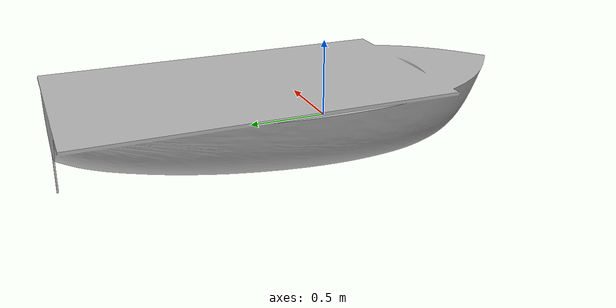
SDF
<?xml version='1.0'?>
<sdf version='1.5'>
  <model name='boat_off'>
    <static>false</static>
    <link name="link">
       <velocity_decay>
        <linear>0.001</linear>
        <angular>0.001</angular>
      </velocity_decay>
      <inertial>
        <pose>0 0 -0.0 0 0 0</pose>
        <mass>10</mass>
        <inertia>
          <ixx>0.3417</ixx>
          <ixy>0</ixy>
          <ixz>0</ixz>
          <iyy>0.3417</iyy>
          <iyz>0</iyz>
          <izz>0.4167</izz>
        </inertia>
      </inertial>
      <collision name="collision">
        <pose> 0 0 0 0 0</pose>
        <geometry>
          <mesh>
            <uri>model://boat_off/meshes/boat.obj</uri>
            <scale>1 1 1</scale>
          </mesh>
        </geometry>
      </collision>
      <visual name="visual">
        <pose> 0 0 0 0 0 0 </pose>
        <geometry>
          <mesh>
            <uri>model://boat_off/meshes/boat.obj</uri>
            <scale>1 1 1</scale>
          </mesh>
        </geometry>
      </visual>
    </link>
    <plugin name="BuoyancyPlugin" filename="libbuoyancy_gazebo_plugin.so">
      <wave_model>ocean_waves</wave_model>
      <fluid_density>1000</fluid_density>
      <fluid_level>0</fluid_level>
      <linear_drag>1000.0</linear_drag>
      <angular_drag>200.0</angular_drag>
      <buoyancy name="buoyancy_base">
        <link_name>link</link_name>
        <pose>0 0 0.3 0 0 1.5708</pose>
        <geometry>
          <box>
            <size>1.3 2.94 0.6</size>
          </box>
        </geometry>
      </buoyancy>
    </plugin>
  </model>
</sdf>
